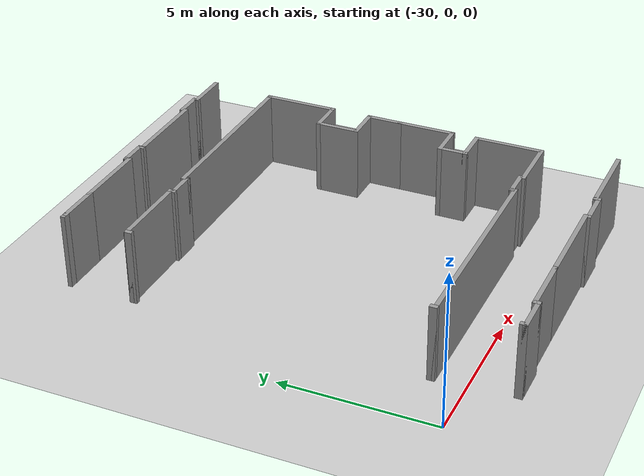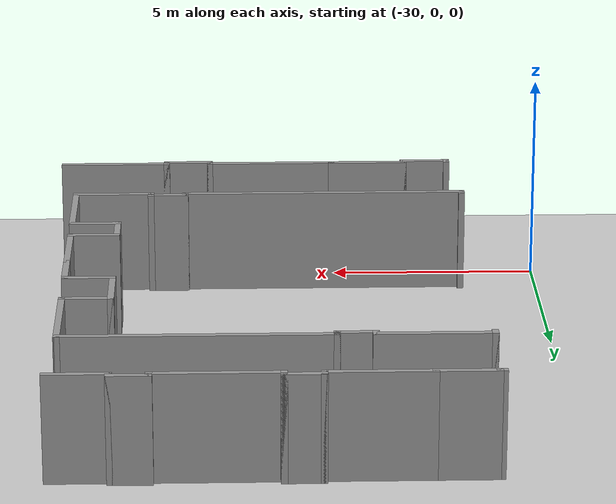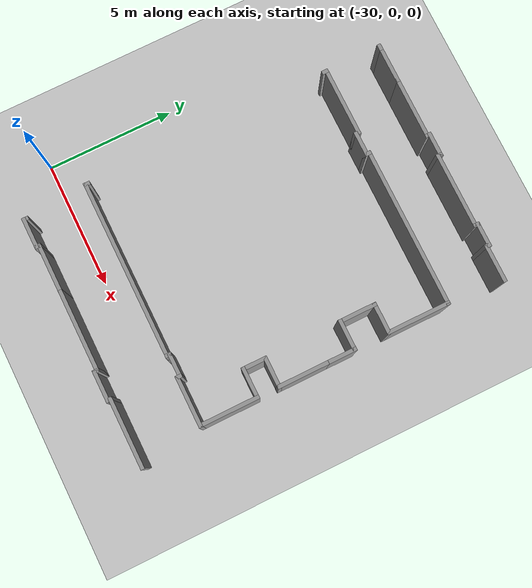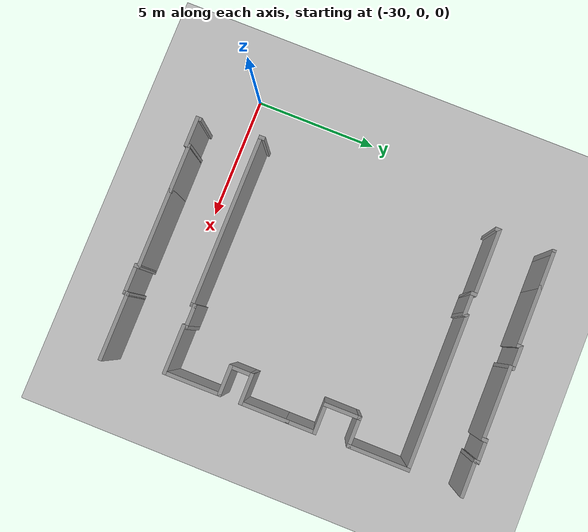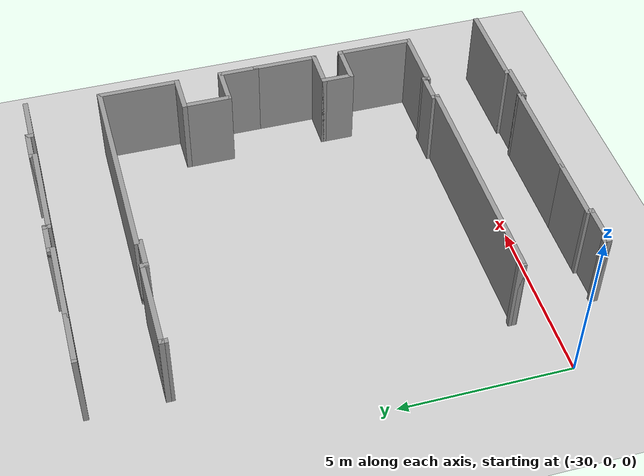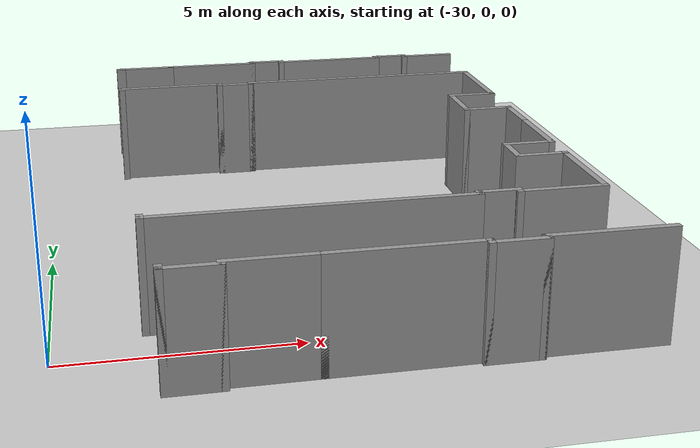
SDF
<sdf version="1.6">
 <world name="default">
  <model name="ground_plane">
   <static>1</static>
   <link name="link">
    <collision name="collision">
     <geometry><plane><normal>0 0 1</normal><size>100 100</size></plane></geometry>
     <surface><friction><ode><mu>100</mu><mu2>50</mu2></ode></friction></surface>
    </collision>
    <visual name="visual">
     <cast_shadows>0</cast_shadows>
     <geometry><plane><normal>0 0 1</normal><size>100 100</size></plane></geometry>
     <material>
      <script><uri>file://media/materials/scripts/gazebo.material</uri><name>Gazebo/Grey</name></script>
     </material>
    </visual>
   </link>
  </model>
  <model name="hallway">
   <pose>-18.4373 5.74333 0 0 -0 0</pose>
   <link name="Wall_100">
    <collision name="Wall_100_Collision">
     <geometry><box><size>3 0.15 2.5</size></box></geometry>
     <pose>0 0 1.25 0 -0 0</pose>
    </collision>
    <visual name="Wall_100_Visual">
     <pose>0 0 1.25 0 -0 0</pose>
     <geometry><box><size>3 0.15 2.5</size></box></geometry>
     <material>
      <script><uri>file://media/materials/scripts/gazebo.material</uri><name>Gazebo/Grey</name></script>
      <ambient>1 1 1 1</ambient>
     </material>
    </visual>
    <pose>-3.6 7.15 0 0 -0 3.14159</pose>
   </link>
   <link name="Wall_101">
    <collision name="Wall_101_Collision">
     <geometry><box><size>0.25 0.15 2.5</size></box></geometry>
     <pose>0 0 1.25 0 -0 0</pose>
    </collision>
    <visual name="Wall_101_Visual">
     <pose>0 0 1.25 0 -0 0</pose>
     <geometry><box><size>0.25 0.15 2.5</size></box></geometry>
     <material>
      <script><uri>file://media/materials/scripts/gazebo.material</uri><name>Gazebo/Grey</name></script>
      <ambient>1 1 1 1</ambient>
     </material>
    </visual>
    <pose>-5.025 7.2 0 0 -0 1.5708</pose>
   </link>
   <link name="Wall_102">
    <collision name="Wall_102_Collision">
     <geometry><box><size>1 0.15 2.5</size></box></geometry>
     <pose>0 0 1.25 0 -0 0</pose>
    </collision>
    <visual name="Wall_102_Visual">
     <pose>0 0 1.25 0 -0 0</pose>
     <geometry><box><size>1 0.15 2.5</size></box></geometry>
     <material>
      <script><uri>file://media/materials/scripts/gazebo.material</uri><name>Gazebo/Grey</name></script>
      <ambient>1 1 1 1</ambient>
     </material>
    </visual>
    <pose>-5.45 7.25 0 0 -0 3.14159</pose>
   </link>
   <link name="Wall_103">
    <collision name="Wall_103_Collision">
     <geometry><box><size>0.25 0.15 2.5</size></box></geometry>
     <pose>0 0 1.25 0 -0 0</pose>
    </collision>
    <visual name="Wall_103_Visual">
     <pose>0 0 1.25 0 -0 0</pose>
     <geometry><box><size>0.25 0.15 2.5</size></box></geometry>
     <material>
      <script><uri>file://media/materials/scripts/gazebo.material</uri><name>Gazebo/Grey</name></script>
      <ambient>1 1 1 1</ambient>
     </material>
    </visual>
    <pose>-5.875 7.2 0 0 0 -1.5708</pose>
   </link>
   <link name="Wall_104">
    <collision name="Wall_104_Collision">
     <geometry><box><size>2.5 0.15 2.5</size></box></geometry>
     <pose>0 0 1.25 0 -0 0</pose>
    </collision>
    <visual name="Wall_104_Visual">
     <pose>0 0 1.25 0 -0 0</pose>
     <geometry><box><size>2.5 0.15 2.5</size></box></geometry>
     <material>
      <script><uri>file://media/materials/scripts/gazebo.material</uri><name>Gazebo/Grey</name></script>
      <ambient>1 1 1 1</ambient>
     </material>
    </visual>
    <pose>-7.05 7.15 0 0 -0 3.14159</pose>
   </link>
   <link name="Wall_106">
    <collision name="Wall_106_Collision">
     <geometry><box><size>1.5 0.15 2.5</size></box></geometry>
     <pose>0 0 1.25 0 -0 0</pose>
    </collision>
    <visual name="Wall_106_Visual">
     <pose>0 0 1.25 0 -0 0</pose>
     <geometry><box><size>1.5 0.15 2.5</size></box></geometry>
     <material>
      <script><uri>file://media/materials/scripts/gazebo.material</uri><name>Gazebo/Grey</name></script>
      <ambient>1 1 1 1</ambient>
     </material>
    </visual>
    <pose>-8.9 7.15 0 0 -0 3.14159</pose>
   </link>
   <link name="Wall_107">
    <collision name="Wall_107_Collision">
     <geometry><box><size>0.25 0.15 2.5</size></box></geometry>
     <pose>0 0 1.25 0 -0 0</pose>
    </collision>
    <visual name="Wall_107_Visual">
     <pose>0 0 1.25 0 -0 0</pose>
     <geometry><box><size>0.25 0.15 2.5</size></box></geometry>
     <material>
      <script><uri>file://media/materials/scripts/gazebo.material</uri><name>Gazebo/Grey</name></script>
      <ambient>1 1 1 1</ambient>
     </material>
    </visual>
    <pose>-9.625 7.15 0 0 -0 3.14159</pose>
   </link>
   <link name="Wall_134">
    <collision name="Wall_134_Collision">
     <geometry><box><size>0.25 0.15 2.5</size></box></geometry>
     <pose>0 0 1.25 0 -0 0</pose>
    </collision>
    <visual name="Wall_134_Visual">
     <pose>0 0 1.25 0 -0 0</pose>
     <geometry><box><size>0.25 0.15 2.5</size></box></geometry>
     <material>
      <script><uri>file://media/materials/scripts/gazebo.material</uri><name>Gazebo/Grey</name></script>
      <ambient>1 1 1 1</ambient>
     </material>
    </visual>
    <pose>-9.675 4.91522 0 0 -0 1.5708</pose>
   </link>
   <link name="Wall_135">
    <collision name="Wall_135_Collision">
     <geometry><box><size>2.75 0.15 2.5</size></box></geometry>
     <pose>0 0 1.25 0 -0 0</pose>
    </collision>
    <visual name="Wall_135_Visual">
     <pose>0 0 1.25 0 -0 0</pose>
     <geometry><box><size>2.75 0.15 2.5</size></box></geometry>
     <material>
      <script><uri>file://media/materials/scripts/gazebo.material</uri><name>Gazebo/Grey</name></script>
      <ambient>1 1 1 1</ambient>
     </material>
    </visual>
    <pose>-8.375 4.96522 0 0 -0 0</pose>
   </link>
   <link name="Wall_136">
    <collision name="Wall_136_Collision">
     <geometry><box><size>0.25 0.15 2.5</size></box></geometry>
     <pose>0 0 1.25 0 -0 0</pose>
    </collision>
    <visual name="Wall_136_Visual">
     <pose>0 0 1.25 0 -0 0</pose>
     <geometry><box><size>0.25 0.15 2.5</size></box></geometry>
     <material>
      <script><uri>file://media/materials/scripts/gazebo.material</uri><name>Gazebo/Grey</name></script>
      <ambient>1 1 1 1</ambient>
     </material>
    </visual>
    <pose>-7.075 4.91522 0 0 0 -1.5708</pose>
   </link>
   <link name="Wall_137">
    <collision name="Wall_137_Collision">
     <geometry><box><size>1 0.15 2.5</size></box></geometry>
     <pose>0 0 1.25 0 -0 0</pose>
    </collision>
    <visual name="Wall_137_Visual">
     <pose>0 0 1.25 0 -0 0</pose>
     <geometry><box><size>1 0.15 2.5</size></box></geometry>
     <material>
      <script><uri>file://media/materials/scripts/gazebo.material</uri><name>Gazebo/Grey</name></script>
      <ambient>1 1 1 1</ambient>
     </material>
    </visual>
    <pose>-6.65 4.86522 0 0 -0 0</pose>
   </link>
   <link name="Wall_138">
    <collision name="Wall_138_Collision">
     <geometry><box><size>0.25 0.15 2.5</size></box></geometry>
     <pose>0 0 1.25 0 -0 0</pose>
    </collision>
    <visual name="Wall_138_Visual">
     <pose>0 0 1.25 0 -0 0</pose>
     <geometry><box><size>0.25 0.15 2.5</size></box></geometry>
     <material>
      <script><uri>file://media/materials/scripts/gazebo.material</uri><name>Gazebo/Grey</name></script>
      <ambient>1 1 1 1</ambient>
     </material>
    </visual>
    <pose>-6.225 4.91522 0 0 -0 1.5708</pose>
   </link>
   <link name="Wall_139">
    <collision name="Wall_139_Collision">
     <geometry><box><size>6.25 0.15 2.5</size></box></geometry>
     <pose>0 0 1.25 0 -0 0</pose>
    </collision>
    <visual name="Wall_139_Visual">
     <pose>0 0 1.25 0 -0 0</pose>
     <geometry><box><size>6.25 0.15 2.5</size></box></geometry>
     <material>
      <script><uri>file://media/materials/scripts/gazebo.material</uri><name>Gazebo/Grey</name></script>
      <ambient>1 1 1 1</ambient>
     </material>
    </visual>
    <pose>-3.175 4.96522 0 0 -0 0</pose>
   </link>
   <link name="Wall_140">
    <collision name="Wall_140_Collision">
     <geometry><box><size>2.5 0.15 2.5</size></box></geometry>
     <pose>0 0 1.25 0 -0 0</pose>
    </collision>
    <visual name="Wall_140_Visual">
     <pose>0 0 1.25 0 -0 0</pose>
     <geometry><box><size>2.5 0.15 2.5</size></box></geometry>
     <material>
      <script><uri>file://media/materials/scripts/gazebo.material</uri><name>Gazebo/Grey</name></script>
      <ambient>1 1 1 1</ambient>
     </material>
    </visual>
    <pose>-0.125 3.79022 0 0 0 -1.5708</pose>
   </link>
   <link name="Wall_141">
    <collision name="Wall_141_Collision">
     <geometry><box><size>1.25 0.15 2.5</size></box></geometry>
     <pose>0 0 1.25 0 -0 0</pose>
    </collision>
    <visual name="Wall_141_Visual">
     <pose>0 0 1.25 0 -0 0</pose>
     <geometry><box><size>1.25 0.15 2.5</size></box></geometry>
     <material>
      <script><uri>file://media/materials/scripts/gazebo.material</uri><name>Gazebo/Grey</name></script>
      <ambient>1 1 1 1</ambient>
     </material>
    </visual>
    <pose>-0.675 2.61522 0 0 -0 3.14159</pose>
   </link>
   <link name="Wall_142">
    <collision name="Wall_142_Collision">
     <geometry><box><size>1.5 0.15 2.5</size></box></geometry>
     <pose>0 0 1.25 0 -0 0</pose>
    </collision>
    <visual name="Wall_142_Visual">
     <pose>0 0 1.25 0 -0 0</pose>
     <geometry><box><size>1.5 0.15 2.5</size></box></geometry>
     <material>
      <script><uri>file://media/materials/scripts/gazebo.material</uri><name>Gazebo/Grey</name></script>
      <ambient>1 1 1 1</ambient>
     </material>
    </visual>
    <pose>-1.225 1.94022 0 0 0 -1.5708</pose>
   </link>
   <link name="Wall_143">
    <collision name="Wall_143_Collision">
     <geometry><box><size>1.25 0.15 2.5</size></box></geometry>
     <pose>0 0 1.25 0 -0 0</pose>
    </collision>
    <visual name="Wall_143_Visual">
     <pose>0 0 1.25 0 -0 0</pose>
     <geometry><box><size>1.25 0.15 2.5</size></box></geometry>
     <material>
      <script><uri>file://media/materials/scripts/gazebo.material</uri><name>Gazebo/Grey</name></script>
      <ambient>1 1 1 1</ambient>
     </material>
    </visual>
    <pose>-0.675 1.26522 0 0 -0 0</pose>
   </link>
   <link name="Wall_144">
    <collision name="Wall_144_Collision">
     <geometry><box><size>1.25 0.15 2.5</size></box></geometry>
     <pose>0 0 1.25 0 -0 0</pose>
    </collision>
    <visual name="Wall_144_Visual">
     <pose>0 0 1.25 0 -0 0</pose>
     <geometry><box><size>1.25 0.15 2.5</size></box></geometry>
     <material>
      <script><uri>file://media/materials/scripts/gazebo.material</uri><name>Gazebo/Grey</name></script>
      <ambient>1 1 1 1</ambient>
     </material>
    </visual>
    <pose>-0.125 0.715217 0 0 0 -1.5708</pose>
   </link>
   <link name="Wall_146">
    <collision name="Wall_146_Collision">
     <geometry><box><size>2 0.15 2.5</size></box></geometry>
     <pose>0 0 1.25 0 -0 0</pose>
    </collision>
    <visual name="Wall_146_Visual">
     <pose>0 0 1.25 0 -0 0</pose>
     <geometry><box><size>2 0.15 2.5</size></box></geometry>
     <material>
      <script><uri>file://media/materials/scripts/gazebo.material</uri><name>Gazebo/Grey</name></script>
      <ambient>1 1 1 1</ambient>
     </material>
    </visual>
    <pose>-0.125 -0.759783 0 0 0 -1.5708</pose>
   </link>
   <link name="Wall_147">
    <collision name="Wall_147_Collision">
     <geometry><box><size>1.25 0.15 2.5</size></box></geometry>
     <pose>0 0 1.25 0 -0 0</pose>
    </collision>
    <visual name="Wall_147_Visual">
     <pose>0 0 1.25 0 -0 0</pose>
     <geometry><box><size>1.25 0.15 2.5</size></box></geometry>
     <material>
      <script><uri>file://media/materials/scripts/gazebo.material</uri><name>Gazebo/Grey</name></script>
      <ambient>1 1 1 1</ambient>
     </material>
    </visual>
    <pose>-0.675 -1.68478 0 0 -0 3.14159</pose>
   </link>
   <link name="Wall_148">
    <collision name="Wall_148_Collision">
     <geometry><box><size>1 0.15 2.5</size></box></geometry>
     <pose>0 0 1.25 0 -0 0</pose>
    </collision>
    <visual name="Wall_148_Visual">
     <pose>0 0 1.25 0 -0 0</pose>
     <geometry><box><size>1 0.15 2.5</size></box></geometry>
     <material>
      <script><uri>file://media/materials/scripts/gazebo.material</uri><name>Gazebo/Grey</name></script>
      <ambient>1 1 1 1</ambient>
     </material>
    </visual>
    <pose>-1.225 -2.10978 0 0 0 -1.5708</pose>
   </link>
   <link name="Wall_15">
    <collision name="Wall_15_Collision">
     <geometry><box><size>0.25 0.15 2.5</size></box></geometry>
     <pose>0 0 1.25 0 -0 0</pose>
    </collision>
    <visual name="Wall_15_Visual">
     <pose>0 0 1.25 0 -0 0</pose>
     <geometry><box><size>0.25 0.15 2.5</size></box></geometry>
     <material>
      <script><uri>file://media/materials/scripts/gazebo.material</uri><name>Gazebo/Grey</name></script>
      <ambient>1 1 1 1</ambient>
     </material>
    </visual>
    <pose>-9.475 -7.2 0 0 0 -1.5708</pose>
   </link>
   <link name="Wall_156">
    <collision name="Wall_156_Collision">
     <geometry><box><size>1.25 0.15 2.5</size></box></geometry>
     <pose>0 0 1.25 0 -0 0</pose>
    </collision>
    <visual name="Wall_156_Visual">
     <pose>0 0 1.25 0 -0 0</pose>
     <geometry><box><size>1.25 0.15 2.5</size></box></geometry>
     <material>
      <script><uri>file://media/materials/scripts/gazebo.material</uri><name>Gazebo/Grey</name></script>
      <ambient>1 1 1 1</ambient>
     </material>
    </visual>
    <pose>-0.675 -2.53478 0 0 -0 0</pose>
   </link>
   <link name="Wall_157">
    <collision name="Wall_157_Collision">
     <geometry><box><size>2.25 0.15 2.5</size></box></geometry>
     <pose>0 0 1.25 0 -0 0</pose>
    </collision>
    <visual name="Wall_157_Visual">
     <pose>0 0 1.25 0 -0 0</pose>
     <geometry><box><size>2.25 0.15 2.5</size></box></geometry>
     <material>
      <script><uri>file://media/materials/scripts/gazebo.material</uri><name>Gazebo/Grey</name></script>
      <ambient>1 1 1 1</ambient>
     </material>
    </visual>
    <pose>-0.125 -3.58478 0 0 0 -1.5708</pose>
   </link>
   <link name="Wall_159">
    <collision name="Wall_159_Collision">
     <geometry><box><size>2 0.15 2.5</size></box></geometry>
     <pose>0 0 1.25 0 -0 0</pose>
    </collision>
    <visual name="Wall_159_Visual">
     <pose>0 0 1.25 0 -0 0</pose>
     <geometry><box><size>2 0.15 2.5</size></box></geometry>
     <material>
      <script><uri>file://media/materials/scripts/gazebo.material</uri><name>Gazebo/Grey</name></script>
      <ambient>1 1 1 1</ambient>
     </material>
    </visual>
    <pose>-1.05 -4.73478 0 0 -0 3.14159</pose>
   </link>
   <link name="Wall_16">
    <collision name="Wall_16_Collision">
     <geometry><box><size>1.25 0.15 2.5</size></box></geometry>
     <pose>0 0 1.25 0 -0 0</pose>
    </collision>
    <visual name="Wall_16_Visual">
     <pose>0 0 1.25 0 -0 0</pose>
     <geometry><box><size>1.25 0.15 2.5</size></box></geometry>
     <material>
      <script><uri>file://media/materials/scripts/gazebo.material</uri><name>Gazebo/Grey</name></script>
      <ambient>1 1 1 1</ambient>
     </material>
    </visual>
    <pose>-8.925 -7.25 0 0 -0 0</pose>
   </link>
   <link name="Wall_160">
    <collision name="Wall_160_Collision">
     <geometry><box><size>0.25 0.15 2.5</size></box></geometry>
     <pose>0 0 1.25 0 -0 0</pose>
    </collision>
    <visual name="Wall_160_Visual">
     <pose>0 0 1.25 0 -0 0</pose>
     <geometry><box><size>0.25 0.15 2.5</size></box></geometry>
     <material>
      <script><uri>file://media/materials/scripts/gazebo.material</uri><name>Gazebo/Grey</name></script>
      <ambient>1 1 1 1</ambient>
     </material>
    </visual>
    <pose>-1.975 -4.68478 0 0 -0 1.5708</pose>
   </link>
   <link name="Wall_161">
    <collision name="Wall_161_Collision">
     <geometry><box><size>1 0.15 2.5</size></box></geometry>
     <pose>0 0 1.25 0 -0 0</pose>
    </collision>
    <visual name="Wall_161_Visual">
     <pose>0 0 1.25 0 -0 0</pose>
     <geometry><box><size>1 0.15 2.5</size></box></geometry>
     <material>
      <script><uri>file://media/materials/scripts/gazebo.material</uri><name>Gazebo/Grey</name></script>
      <ambient>1 1 1 1</ambient>
     </material>
    </visual>
    <pose>-2.4 -4.63478 0 0 -0 3.14159</pose>
   </link>
   <link name="Wall_162">
    <collision name="Wall_162_Collision">
     <geometry><box><size>0.25 0.15 2.5</size></box></geometry>
     <pose>0 0 1.25 0 -0 0</pose>
    </collision>
    <visual name="Wall_162_Visual">
     <pose>0 0 1.25 0 -0 0</pose>
     <geometry><box><size>0.25 0.15 2.5</size></box></geometry>
     <material>
      <script><uri>file://media/materials/scripts/gazebo.material</uri><name>Gazebo/Grey</name></script>
      <ambient>1 1 1 1</ambient>
     </material>
    </visual>
    <pose>-2.825 -4.68478 0 0 0 -1.5708</pose>
   </link>
   <link name="Wall_163">
    <collision name="Wall_163_Collision">
     <geometry><box><size>7 0.15 2.5</size></box></geometry>
     <pose>0 0 1.25 0 -0 0</pose>
    </collision>
    <visual name="Wall_163_Visual">
     <pose>0 0 1.25 0 -0 0</pose>
     <geometry><box><size>7 0.15 2.5</size></box></geometry>
     <material>
      <script><uri>file://media/materials/scripts/gazebo.material</uri><name>Gazebo/Grey</name></script>
      <ambient>1 1 1 1</ambient>
     </material>
    </visual>
    <pose>-6.25 -4.73478 0 0 -0 3.14159</pose>
   </link>
   <link name="Wall_164">
    <collision name="Wall_164_Collision">
     <geometry><box><size>0.25 0.15 2.5</size></box></geometry>
     <pose>0 0 1.25 0 -0 0</pose>
    </collision>
    <visual name="Wall_164_Visual">
     <pose>0 0 1.25 0 -0 0</pose>
     <geometry><box><size>0.25 0.15 2.5</size></box></geometry>
     <material>
      <script><uri>file://media/materials/scripts/gazebo.material</uri><name>Gazebo/Grey</name></script>
      <ambient>1 1 1 1</ambient>
     </material>
    </visual>
    <pose>-9.675 -4.68478 0 0 -0 1.5708</pose>
   </link>
   <link name="Wall_17">
    <collision name="Wall_17_Collision">
     <geometry><box><size>0.25 0.15 2.5</size></box></geometry>
     <pose>0 0 1.25 0 -0 0</pose>
    </collision>
    <visual name="Wall_17_Visual">
     <pose>0 0 1.25 0 -0 0</pose>
     <geometry><box><size>0.25 0.15 2.5</size></box></geometry>
     <material>
      <script><uri>file://media/materials/scripts/gazebo.material</uri><name>Gazebo/Grey</name></script>
      <ambient>1 1 1 1</ambient>
     </material>
    </visual>
    <pose>-8.375 -7.2 0 0 -0 1.5708</pose>
   </link>
   <link name="Wall_18">
    <collision name="Wall_18_Collision">
     <geometry><box><size>2 0.15 2.5</size></box></geometry>
     <pose>0 0 1.25 0 -0 0</pose>
    </collision>
    <visual name="Wall_18_Visual">
     <pose>0 0 1.25 0 -0 0</pose>
     <geometry><box><size>2 0.15 2.5</size></box></geometry>
     <material>
      <script><uri>file://media/materials/scripts/gazebo.material</uri><name>Gazebo/Grey</name></script>
      <ambient>1 1 1 1</ambient>
     </material>
    </visual>
    <pose>-7.45 -7.15 0 0 -0 0</pose>
   </link>
   <link name="Wall_20">
    <collision name="Wall_20_Collision">
     <geometry><box><size>3.25 0.15 2.5</size></box></geometry>
     <pose>0 0 1.25 0 -0 0</pose>
    </collision>
    <visual name="Wall_20_Visual">
     <pose>0 0 1.25 0 -0 0</pose>
     <geometry><box><size>3.25 0.15 2.5</size></box></geometry>
     <material>
      <script><uri>file://media/materials/scripts/gazebo.material</uri><name>Gazebo/Grey</name></script>
      <ambient>1 1 1 1</ambient>
     </material>
    </visual>
    <pose>-4.975 -7.15 0 0 -0 0</pose>
   </link>
   <link name="Wall_21">
    <collision name="Wall_21_Collision">
     <geometry><box><size>0.25 0.15 2.5</size></box></geometry>
     <pose>0 0 1.25 0 -0 0</pose>
    </collision>
    <visual name="Wall_21_Visual">
     <pose>0 0 1.25 0 -0 0</pose>
     <geometry><box><size>0.25 0.15 2.5</size></box></geometry>
     <material>
      <script><uri>file://media/materials/scripts/gazebo.material</uri><name>Gazebo/Grey</name></script>
      <ambient>1 1 1 1</ambient>
     </material>
    </visual>
    <pose>-3.425 -7.2 0 0 0 -1.5708</pose>
   </link>
   <link name="Wall_22">
    <collision name="Wall_22_Collision">
     <geometry><box><size>1.25 0.15 2.5</size></box></geometry>
     <pose>0 0 1.25 0 -0 0</pose>
    </collision>
    <visual name="Wall_22_Visual">
     <pose>0 0 1.25 0 -0 0</pose>
     <geometry><box><size>1.25 0.15 2.5</size></box></geometry>
     <material>
      <script><uri>file://media/materials/scripts/gazebo.material</uri><name>Gazebo/Grey</name></script>
      <ambient>1 1 1 1</ambient>
     </material>
    </visual>
    <pose>-2.875 -7.25 0 0 -0 0</pose>
   </link>
   <link name="Wall_23">
    <collision name="Wall_23_Collision">
     <geometry><box><size>0.25 0.15 2.5</size></box></geometry>
     <pose>0 0 1.25 0 -0 0</pose>
    </collision>
    <visual name="Wall_23_Visual">
     <pose>0 0 1.25 0 -0 0</pose>
     <geometry><box><size>0.25 0.15 2.5</size></box></geometry>
     <material>
      <script><uri>file://media/materials/scripts/gazebo.material</uri><name>Gazebo/Grey</name></script>
      <ambient>1 1 1 1</ambient>
     </material>
    </visual>
    <pose>-2.325 -7.2 0 0 -0 1.5708</pose>
   </link>
   <link name="Wall_24">
    <collision name="Wall_24_Collision">
     <geometry><box><size>2.75 0.15 2.5</size></box></geometry>
     <pose>0 0 1.25 0 -0 0</pose>
    </collision>
    <visual name="Wall_24_Visual">
     <pose>0 0 1.25 0 -0 0</pose>
     <geometry><box><size>2.75 0.15 2.5</size></box></geometry>
     <material>
      <script><uri>file://media/materials/scripts/gazebo.material</uri><name>Gazebo/Grey</name></script>
      <ambient>1 1 1 1</ambient>
     </material>
    </visual>
    <pose>-1.025 -7.15 0 0 -0 0</pose>
   </link>
   <link name="Wall_96">
    <collision name="Wall_96_Collision">
     <geometry><box><size>1.5 0.15 2.5</size></box></geometry>
     <pose>0 0 1.25 0 -0 0</pose>
    </collision>
    <visual name="Wall_96_Visual">
     <pose>0 0 1.25 0 -0 0</pose>
     <geometry><box><size>1.5 0.15 2.5</size></box></geometry>
     <material>
      <script><uri>file://media/materials/scripts/gazebo.material</uri><name>Gazebo/Grey</name></script>
      <ambient>1 1 1 1</ambient>
     </material>
    </visual>
    <pose>-0.649999 7.15 0 0 -0 3.14159</pose>
   </link>
   <link name="Wall_97">
    <collision name="Wall_97_Collision">
     <geometry><box><size>0.25 0.15 2.5</size></box></geometry>
     <pose>0 0 1.25 0 -0 0</pose>
    </collision>
    <visual name="Wall_97_Visual">
     <pose>0 0 1.25 0 -0 0</pose>
     <geometry><box><size>0.25 0.15 2.5</size></box></geometry>
     <material>
      <script><uri>file://media/materials/scripts/gazebo.material</uri><name>Gazebo/Grey</name></script>
      <ambient>1 1 1 1</ambient>
     </material>
    </visual>
    <pose>-1.325 7.2 0 0 -0 1.5708</pose>
   </link>
   <link name="Wall_98">
    <collision name="Wall_98_Collision">
     <geometry><box><size>1 0.15 2.5</size></box></geometry>
     <pose>0 0 1.25 0 -0 0</pose>
    </collision>
    <visual name="Wall_98_Visual">
     <pose>0 0 1.25 0 -0 0</pose>
     <geometry><box><size>1 0.15 2.5</size></box></geometry>
     <material>
      <script><uri>file://media/materials/scripts/gazebo.material</uri><name>Gazebo/Grey</name></script>
      <ambient>1 1 1 1</ambient>
     </material>
    </visual>
    <pose>-1.75 7.25 0 0 -0 3.14159</pose>
   </link>
   <link name="Wall_99">
    <collision name="Wall_99_Collision">
     <geometry><box><size>0.25 0.15 2.5</size></box></geometry>
     <pose>0 0 1.25 0 -0 0</pose>
    </collision>
    <visual name="Wall_99_Visual">
     <pose>0 0 1.25 0 -0 0</pose>
     <geometry><box><size>0.25 0.15 2.5</size></box></geometry>
     <material>
      <script><uri>file://media/materials/scripts/gazebo.material</uri><name>Gazebo/Grey</name></script>
      <ambient>1 1 1 1</ambient>
     </material>
    </visual>
    <pose>-2.175 7.2 0 0 0 -1.5708</pose>
   </link>
   <static>1</static>
  </model>
 </world>
</sdf>
